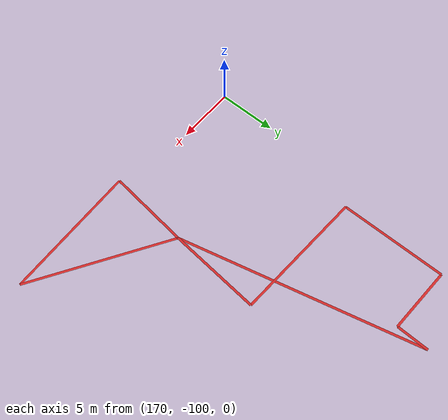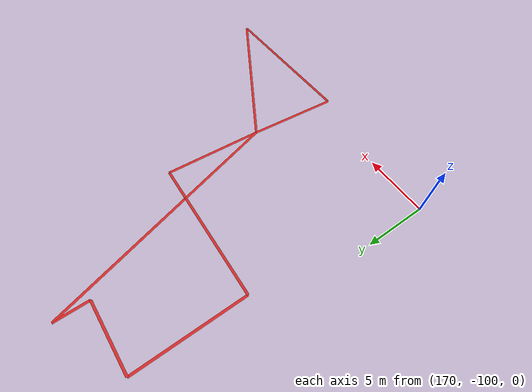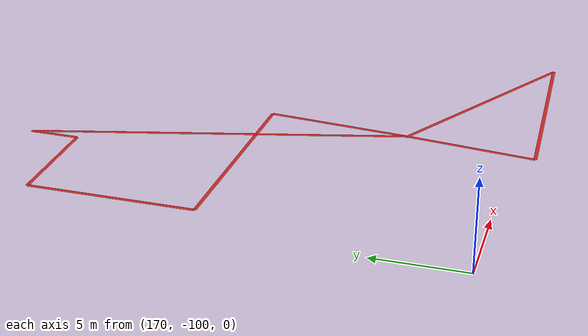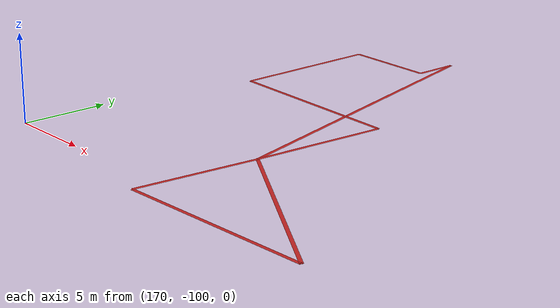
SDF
<sdf version="1.4">
 <world name="default">
  <include><uri>model://sun</uri></include>
  <model name="office_building_170023126">
   <static>true</static>
   <pose>178.27629321 -82.9660151296 0.0 0 0 0</pose>
   <link name="office_building_170023126_0">
    <collision name="office_building_170023126_0">
     <geometry><box><size>11.2671763174 0.2 0</size></box></geometry>
    </collision>
    <visual name="office_building_170023126_0">
     <geometry><box><size>11.2671763174 0.2 0</size></box></geometry>
     <material>
      <script><uri>file://media/materials/scripts/gazebo.material</uri><name>Gazebo/Red</name></script>
     </material>
    </visual>
    <pose>-0.708425642362 -3.11465862359 0 0 0 -0.050282682687</pose>
   </link>
   <link name="office_building_170023126_1">
    <collision name="office_building_170023126_1">
     <geometry><box><size>9.03509890922 0.2 0</size></box></geometry>
    </collision>
    <visual name="office_building_170023126_1">
     <geometry><box><size>9.03509890922 0.2 0</size></box></geometry>
     <material>
      <script><uri>file://media/materials/scripts/gazebo.material</uri><name>Gazebo/Red</name></script>
     </material>
    </visual>
    <pose>-6.32940202375 1.68604006589 0 0 0 -1.57201190682</pose>
   </link>
   <link name="office_building_170023126_2">
    <collision name="office_building_170023126_2">
     <geometry><box><size>5.58640973685 0.2 0</size></box></geometry>
    </collision>
    <visual name="office_building_170023126_2">
     <geometry><box><size>5.58640973685 0.2 0</size></box></geometry>
     <material>
      <script><uri>file://media/materials/scripts/gazebo.material</uri><name>Gazebo/Red</name></script>
     </material>
    </visual>
    <pose>-3.53291633413 6.09248017896 0 0 0 3.10180490825</pose>
   </link>
   <link name="office_building_170023126_3">
    <collision name="office_building_170023126_3">
     <geometry><box><size>2.71805943219 0.2 0</size></box></geometry>
    </collision>
    <visual name="office_building_170023126_3">
     <geometry><box><size>2.71805943219 0.2 0</size></box></geometry>
     <material>
      <script><uri>file://media/materials/scripts/gazebo.material</uri><name>Gazebo/Red</name></script>
     </material>
    </visual>
    <pose>-0.719702216879 7.34022223375 0 0 0 -1.58714685907</pose>
   </link>
   <link name="office_building_170023126_4">
    <collision name="office_building_170023126_4">
     <geometry><box><size>20.5630380712 0.2 0</size></box></geometry>
    </collision>
    <visual name="office_building_170023126_4">
     <geometry><box><size>20.5630380712 0.2 0</size></box></geometry>
     <material>
      <script><uri>file://media/materials/scripts/gazebo.material</uri><name>Gazebo/Red</name></script>
     </material>
    </visual>
    <pose>1.78232088621 -1.27891595731 0 0 0 1.81438855792</pose>
   </link>
   <link name="office_building_170023126_5">
    <collision name="office_building_170023126_5">
     <geometry><box><size>7.8864149029 0.2 0</size></box></geometry>
    </collision>
    <visual name="office_building_170023126_5">
     <geometry><box><size>7.8864149029 0.2 0</size></box></geometry>
     <material>
      <script><uri>file://media/materials/scripts/gazebo.material</uri><name>Gazebo/Red</name></script>
     </material>
    </visual>
    <pose>4.59008315035 -7.32735670159 0 0 0 -1.65406313877</pose>
   </link>
  </model>
  <model name="office_building_170023148">
   <static>true</static>
   <pose>184.998667111 -97.6379141483 0.0 0 0 0</pose>
   <link name="office_building_170023148_0">
    <collision name="office_building_170023148_0">
     <geometry><box><size>12.507184855 0.2 0</size></box></geometry>
    </collision>
    <visual name="office_building_170023148_0">
     <geometry><box><size>12.507184855 0.2 0</size></box></geometry>
     <material>
      <script><uri>file://media/materials/scripts/gazebo.material</uri><name>Gazebo/Red</name></script>
     </material>
    </visual>
    <pose>2.84380832757 0.102235752711 0 0 0 2.58330186739</pose>
   </link>
   <link name="office_building_170023148_1">
    <collision name="office_building_170023148_1">
     <geometry><box><size>11.382581748 0.2 0</size></box></geometry>
    </collision>
    <visual name="office_building_170023148_1">
     <geometry><box><size>11.382581748 0.2 0</size></box></geometry>
     <material>
      <script><uri>file://media/materials/scripts/gazebo.material</uri><name>Gazebo/Red</name></script>
     </material>
    </visual>
    <pose>2.46024978062 -3.4149968117 0 0 0 0.0359348208769</pose>
   </link>
   <link name="office_building_170023148_2">
    <collision name="office_building_170023148_2">
     <geometry><box><size>7.07616904012 0.2 0</size></box></geometry>
    </collision>
    <visual name="office_building_170023148_2">
     <geometry><box><size>7.07616904012 0.2 0</size></box></geometry>
     <material>
      <script><uri>file://media/materials/scripts/gazebo.material</uri><name>Gazebo/Red</name></script>
     </material>
    </visual>
    <pose>-2.84380832757 -0.102235752711 0 0 0 -1.67941833274</pose>
   </link>
  </model>
 </world>
</sdf>
